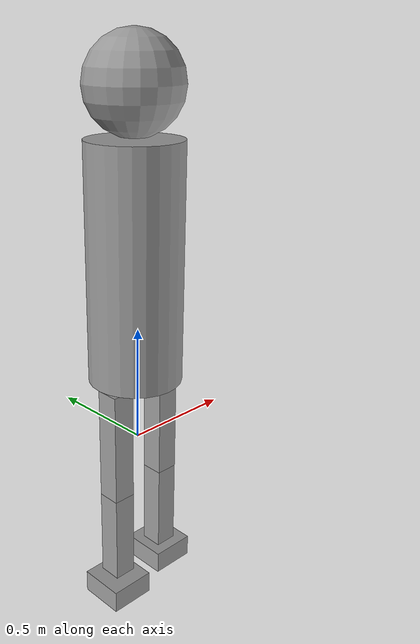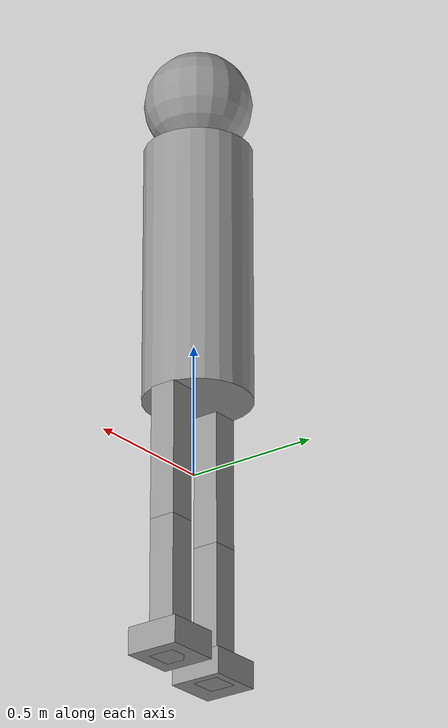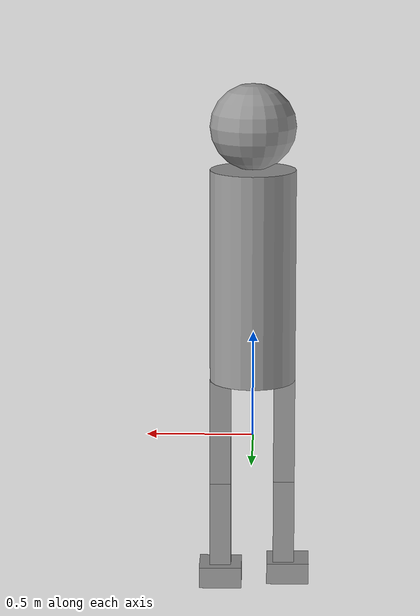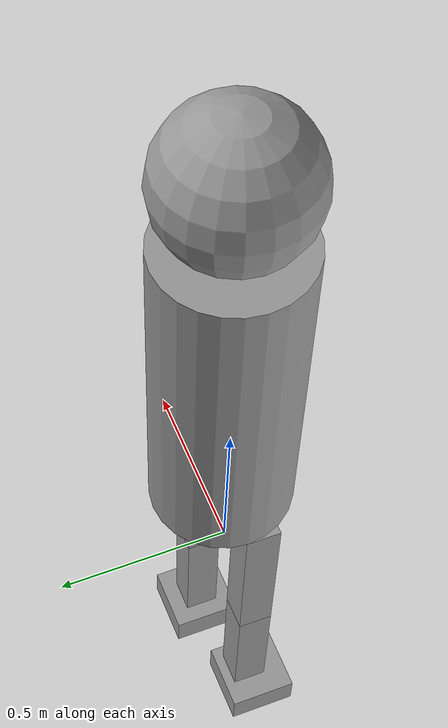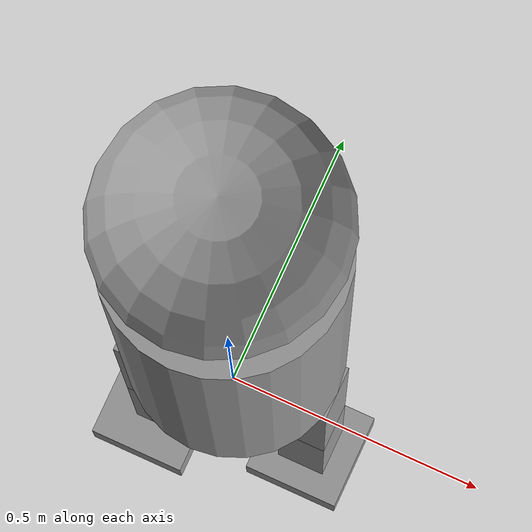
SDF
<?xml version='1.0'?>
<sdf version='1.6'>
  <model name='humanoid_1'>
    <link name='link_0'>
      <pose frame=''>0.0025 0.019375 0.775 0 -0 0</pose>
      <inertial>
        <mass>1</mass>
        <inertia>
          <ixx>0.145833</ixx>
          <ixy>0</ixy>
          <ixz>0</ixz>
          <iyy>0.145833</iyy>
          <iyz>0</iyz>
          <izz>0.125</izz>
        </inertia>
        <pose frame=''>0 0 0 0 -0 0</pose>
      </inertial>
      <gravity>1</gravity>
      <self_collide>0</self_collide>
      <kinematic>0</kinematic>
      <visual name='visual'>
        <pose frame=''>0 0 0 0 -0 0</pose>
        <geometry>
          <cylinder>
            <radius>0.2</radius>
            <length>1</length>
          </cylinder>
        </geometry>
        <material>
          <lighting>1</lighting>
          <script>
            <uri>file://media/materials/scripts/gazebo.material</uri>
            <name>Gazebo/Grey</name>
          </script>
          <shader type='pixel'>
            <normal_map>__default__</normal_map>
          </shader>
          <ambient>0.3 0.3 0.3 1</ambient>
          <diffuse>0.7 0.7 0.7 1</diffuse>
          <specular>0.01 0.01 0.01 1</specular>
          <emissive>0 0 0 1</emissive>
        </material>
        <transparency>0</transparency>
        <cast_shadows>1</cast_shadows>
      </visual>
      <collision name='collision'>
        <laser_retro>0</laser_retro>
        <max_contacts>10</max_contacts>
        <pose frame=''>0 0 0 0 -0 0</pose>
        <geometry>
          <cylinder>
            <radius>0.2</radius>
            <length>1</length>
          </cylinder>
        </geometry>
        <surface>
          <friction>
            <ode>
              <mu>1</mu>
              <mu2>1</mu2>
              <fdir1>0 0 0</fdir1>
              <slip1>0</slip1>
              <slip2>0</slip2>
            </ode>
            <torsional>
              <coefficient>1</coefficient>
              <patch_radius>0</patch_radius>
              <surface_radius>0</surface_radius>
              <use_patch_radius>1</use_patch_radius>
              <ode>
                <slip>0</slip>
              </ode>
            </torsional>
          </friction>
          <bounce>
            <restitution_coefficient>0</restitution_coefficient>
            <threshold>1e+06</threshold>
          </bounce>
          <contact>
            <collide_without_contact>0</collide_without_contact>
            <collide_without_contact_bitmask>1</collide_without_contact_bitmask>
            <collide_bitmask>1</collide_bitmask>
            <ode>
              <soft_cfm>0</soft_cfm>
              <soft_erp>0.2</soft_erp>
              <kp>1e+13</kp>
              <kd>1</kd>
              <max_vel>0.01</max_vel>
              <min_depth>0</min_depth>
            </ode>
            <bullet>
              <split_impulse>1</split_impulse>
              <split_impulse_penetration_threshold>-0.01</split_impulse_penetration_threshold>
              <soft_cfm>0</soft_cfm>
              <soft_erp>0.2</soft_erp>
              <kp>1e+13</kp>
              <kd>1</kd>
            </bullet>
          </contact>
        </surface>
      </collision>
    </link>
    <link name='link_2'>
      <pose frame=''>0.0025 0.019375 1.475 0 -0 0</pose>
      <inertial>
        <mass>1</mass>
        <inertia>
          <ixx>0.1</ixx>
          <ixy>0</ixy>
          <ixz>0</ixz>
          <iyy>0.1</iyy>
          <iyz>0</iyz>
          <izz>0.1</izz>
        </inertia>
        <pose frame=''>0 0 0 0 -0 0</pose>
      </inertial>
      <gravity>1</gravity>
      <self_collide>0</self_collide>
      <kinematic>0</kinematic>
      <visual name='visual'>
        <pose frame=''>0 0 0 0 -0 0</pose>
        <geometry>
          <sphere>
            <radius>0.2</radius>
          </sphere>
        </geometry>
        <material>
          <lighting>1</lighting>
          <script>
            <uri>file://media/materials/scripts/gazebo.material</uri>
            <name>Gazebo/Grey</name>
          </script>
          <shader type='pixel'>
            <normal_map>__default__</normal_map>
          </shader>
          <ambient>0.3 0.3 0.3 1</ambient>
          <diffuse>0.7 0.7 0.7 1</diffuse>
          <specular>0.01 0.01 0.01 1</specular>
          <emissive>0 0 0 1</emissive>
        </material>
        <transparency>0</transparency>
        <cast_shadows>1</cast_shadows>
      </visual>
      <collision name='collision'>
        <laser_retro>0</laser_retro>
        <max_contacts>10</max_contacts>
        <pose frame=''>0 0 0 0 -0 0</pose>
        <geometry>
          <sphere>
            <radius>0.2</radius>
          </sphere>
        </geometry>
        <surface>
          <friction>
            <ode>
              <mu>1</mu>
              <mu2>1</mu2>
              <fdir1>0 0 0</fdir1>
              <slip1>0</slip1>
              <slip2>0</slip2>
            </ode>
            <torsional>
              <coefficient>1</coefficient>
              <patch_radius>0</patch_radius>
              <surface_radius>0</surface_radius>
              <use_patch_radius>1</use_patch_radius>
              <ode>
                <slip>0</slip>
              </ode>
            </torsional>
          </friction>
          <bounce>
            <restitution_coefficient>0</restitution_coefficient>
            <threshold>1e+06</threshold>
          </bounce>
          <contact>
            <collide_without_contact>0</collide_without_contact>
            <collide_without_contact_bitmask>1</collide_without_contact_bitmask>
            <collide_bitmask>1</collide_bitmask>
            <ode>
              <soft_cfm>0</soft_cfm>
              <soft_erp>0.2</soft_erp>
              <kp>1e+13</kp>
              <kd>1</kd>
              <max_vel>0.01</max_vel>
              <min_depth>0</min_depth>
            </ode>
            <bullet>
              <split_impulse>1</split_impulse>
              <split_impulse_penetration_threshold>-0.01</split_impulse_penetration_threshold>
              <soft_cfm>0</soft_cfm>
              <soft_erp>0.2</soft_erp>
              <kp>1e+13</kp>
              <kd>1</kd>
            </bullet>
          </contact>
        </surface>
      </collision>
    </link>
    <link name='link_4'>
      <pose frame=''>-0.1475 -0.025625 0.025 0 -0 0</pose>
      <inertial>
        <mass>1</mass>
        <inertia>
          <ixx>0.166667</ixx>
          <ixy>0</ixy>
          <ixz>0</ixz>
          <iyy>0.166667</iyy>
          <iyz>0</iyz>
          <izz>0.166667</izz>
        </inertia>
        <pose frame=''>0 0 0 0 -0 0</pose>
      </inertial>
      <gravity>1</gravity>
      <self_collide>0</self_collide>
      <kinematic>0</kinematic>
      <visual name='visual'>
        <pose frame=''>0 0 0 0 -0 0</pose>
        <geometry>
          <box>
            <size>0.1 0.1 0.5</size>
          </box>
        </geometry>
        <material>
          <lighting>1</lighting>
          <script>
            <uri>file://media/materials/scripts/gazebo.material</uri>
            <name>Gazebo/Grey</name>
          </script>
          <shader type='pixel'>
            <normal_map>__default__</normal_map>
          </shader>
          <ambient>0.3 0.3 0.3 1</ambient>
          <diffuse>0.7 0.7 0.7 1</diffuse>
          <specular>0.01 0.01 0.01 1</specular>
          <emissive>0 0 0 1</emissive>
        </material>
        <transparency>0</transparency>
        <cast_shadows>1</cast_shadows>
      </visual>
      <collision name='collision'>
        <laser_retro>0</laser_retro>
        <max_contacts>10</max_contacts>
        <pose frame=''>0 0 0 0 -0 0</pose>
        <geometry>
          <box>
            <size>0.1 0.1 0.5</size>
          </box>
        </geometry>
        <surface>
          <friction>
            <ode>
              <mu>1</mu>
              <mu2>1</mu2>
              <fdir1>0 0 0</fdir1>
              <slip1>0</slip1>
              <slip2>0</slip2>
            </ode>
            <torsional>
              <coefficient>1</coefficient>
              <patch_radius>0</patch_radius>
              <surface_radius>0</surface_radius>
              <use_patch_radius>1</use_patch_radius>
              <ode>
                <slip>0</slip>
              </ode>
            </torsional>
          </friction>
          <bounce>
            <restitution_coefficient>0</restitution_coefficient>
            <threshold>1e+06</threshold>
          </bounce>
          <contact>
            <collide_without_contact>0</collide_without_contact>
            <collide_without_contact_bitmask>1</collide_without_contact_bitmask>
            <collide_bitmask>1</collide_bitmask>
            <ode>
              <soft_cfm>0</soft_cfm>
              <soft_erp>0.2</soft_erp>
              <kp>1e+13</kp>
              <kd>1</kd>
              <max_vel>0.01</max_vel>
              <min_depth>0</min_depth>
            </ode>
            <bullet>
              <split_impulse>1</split_impulse>
              <split_impulse_penetration_threshold>-0.01</split_impulse_penetration_threshold>
              <soft_cfm>0</soft_cfm>
              <soft_erp>0.2</soft_erp>
              <kp>1e+13</kp>
              <kd>1</kd>
            </bullet>
          </contact>
        </surface>
      </collision>
    </link>
    <link name='link_4_clone'>
      <pose frame=''>-0.1475 -0.025625 -0.475 0 -0 0</pose>
      <inertial>
        <mass>1</mass>
        <inertia>
          <ixx>0.166667</ixx>
          <ixy>0</ixy>
          <ixz>0</ixz>
          <iyy>0.166667</iyy>
          <iyz>0</iyz>
          <izz>0.166667</izz>
        </inertia>
        <pose frame=''>0 0 0 0 -0 0</pose>
      </inertial>
      <self_collide>0</self_collide>
      <kinematic>0</kinematic>
      <gravity>1</gravity>
      <visual name='visual'>
        <pose frame=''>0 0 0 0 -0 0</pose>
        <geometry>
          <box>
            <size>0.1 0.1 0.5</size>
          </box>
        </geometry>
        <material>
          <lighting>1</lighting>
          <script>
            <uri>file://media/materials/scripts/gazebo.material</uri>
            <name>Gazebo/Grey</name>
          </script>
          <shader type='pixel'>
            <normal_map>__default__</normal_map>
          </shader>
          <ambient>0.3 0.3 0.3 1</ambient>
          <diffuse>0.7 0.7 0.7 1</diffuse>
          <specular>0.01 0.01 0.01 1</specular>
          <emissive>0 0 0 1</emissive>
        </material>
        <transparency>0</transparency>
        <cast_shadows>1</cast_shadows>
      </visual>
      <collision name='collision'>
        <laser_retro>0</laser_retro>
        <max_contacts>10</max_contacts>
        <pose frame=''>0 0 0 0 -0 0</pose>
        <geometry>
          <box>
            <size>0.1 0.1 0.5</size>
          </box>
        </geometry>
        <surface>
          <friction>
            <ode>
              <mu>1</mu>
              <mu2>1</mu2>
              <fdir1>0 0 0</fdir1>
              <slip1>0</slip1>
              <slip2>0</slip2>
            </ode>
            <torsional>
              <coefficient>1</coefficient>
              <patch_radius>0</patch_radius>
              <surface_radius>0</surface_radius>
              <use_patch_radius>1</use_patch_radius>
              <ode>
                <slip>0</slip>
              </ode>
            </torsional>
          </friction>
          <bounce>
            <restitution_coefficient>0</restitution_coefficient>
            <threshold>1e+06</threshold>
          </bounce>
          <contact>
            <collide_without_contact>0</collide_without_contact>
            <collide_without_contact_bitmask>1</collide_without_contact_bitmask>
            <collide_bitmask>1</collide_bitmask>
            <ode>
              <soft_cfm>0</soft_cfm>
              <soft_erp>0.2</soft_erp>
              <kp>1e+13</kp>
              <kd>1</kd>
              <max_vel>0.01</max_vel>
              <min_depth>0</min_depth>
            </ode>
            <bullet>
              <split_impulse>1</split_impulse>
              <split_impulse_penetration_threshold>-0.01</split_impulse_penetration_threshold>
              <soft_cfm>0</soft_cfm>
              <soft_erp>0.2</soft_erp>
              <kp>1e+13</kp>
              <kd>1</kd>
            </bullet>
          </contact>
        </surface>
      </collision>
    </link>
    <link name='link_4_clone_0'>
      <pose frame=''>0.1525 0.019375 0.025 0 -0 0</pose>
      <inertial>
        <mass>1</mass>
        <inertia>
          <ixx>0.166667</ixx>
          <ixy>0</ixy>
          <ixz>0</ixz>
          <iyy>0.166667</iyy>
          <iyz>0</iyz>
          <izz>0.166667</izz>
        </inertia>
        <pose frame=''>0 0 0 0 -0 0</pose>
      </inertial>
      <self_collide>0</self_collide>
      <kinematic>0</kinematic>
      <visual name='visual'>
        <pose frame=''>0 0 0 0 -0 0</pose>
        <geometry>
          <box>
            <size>0.1 0.1 0.5</size>
          </box>
        </geometry>
        <material>
          <lighting>1</lighting>
          <script>
            <uri>file://media/materials/scripts/gazebo.material</uri>
            <name>Gazebo/Grey</name>
          </script>
          <shader type='pixel'>
            <normal_map>__default__</normal_map>
          </shader>
          <ambient>0.3 0.3 0.3 1</ambient>
          <diffuse>0.7 0.7 0.7 1</diffuse>
          <specular>0.01 0.01 0.01 1</specular>
          <emissive>0 0 0 1</emissive>
        </material>
        <transparency>0</transparency>
        <cast_shadows>1</cast_shadows>
      </visual>
      <collision name='collision'>
        <laser_retro>0</laser_retro>
        <max_contacts>10</max_contacts>
        <pose frame=''>0 0 0 0 -0 0</pose>
        <geometry>
          <box>
            <size>0.1 0.1 0.5</size>
          </box>
        </geometry>
        <surface>
          <friction>
            <ode>
              <mu>1</mu>
              <mu2>1</mu2>
              <fdir1>0 0 0</fdir1>
              <slip1>0</slip1>
              <slip2>0</slip2>
            </ode>
            <torsional>
              <coefficient>1</coefficient>
              <patch_radius>0</patch_radius>
              <surface_radius>0</surface_radius>
              <use_patch_radius>1</use_patch_radius>
              <ode>
                <slip>0</slip>
              </ode>
            </torsional>
          </friction>
          <bounce>
            <restitution_coefficient>0</restitution_coefficient>
            <threshold>1e+06</threshold>
          </bounce>
          <contact>
            <collide_without_contact>0</collide_without_contact>
            <collide_without_contact_bitmask>1</collide_without_contact_bitmask>
            <collide_bitmask>1</collide_bitmask>
            <ode>
              <soft_cfm>0</soft_cfm>
              <soft_erp>0.2</soft_erp>
              <kp>1e+13</kp>
              <kd>1</kd>
              <max_vel>0.01</max_vel>
              <min_depth>0</min_depth>
            </ode>
            <bullet>
              <split_impulse>1</split_impulse>
              <split_impulse_penetration_threshold>-0.01</split_impulse_penetration_threshold>
              <soft_cfm>0</soft_cfm>
              <soft_erp>0.2</soft_erp>
              <kp>1e+13</kp>
              <kd>1</kd>
            </bullet>
          </contact>
        </surface>
      </collision>
    </link>
    <link name='link_4_clone_1'>
      <pose frame=''>0.1525 0.019375 -0.475 0 -0 0</pose>
      <inertial>
        <mass>1</mass>
        <inertia>
          <ixx>0.166667</ixx>
          <ixy>0</ixy>
          <ixz>0</ixz>
          <iyy>0.166667</iyy>
          <iyz>0</iyz>
          <izz>0.166667</izz>
        </inertia>
        <pose frame=''>0 0 0 0 -0 0</pose>
      </inertial>
      <self_collide>0</self_collide>
      <kinematic>0</kinematic>
      <visual name='visual'>
        <pose frame=''>0 0 0 0 -0 0</pose>
        <geometry>
          <box>
            <size>0.1 0.1 0.5</size>
          </box>
        </geometry>
        <material>
          <lighting>1</lighting>
          <script>
            <uri>file://media/materials/scripts/gazebo.material</uri>
            <name>Gazebo/Grey</name>
          </script>
          <shader type='pixel'>
            <normal_map>__default__</normal_map>
          </shader>
          <ambient>0.3 0.3 0.3 1</ambient>
          <diffuse>0.7 0.7 0.7 1</diffuse>
          <specular>0.01 0.01 0.01 1</specular>
          <emissive>0 0 0 1</emissive>
        </material>
        <transparency>0</transparency>
        <cast_shadows>1</cast_shadows>
      </visual>
      <collision name='collision'>
        <laser_retro>0</laser_retro>
        <max_contacts>10</max_contacts>
        <pose frame=''>0 0 0 0 -0 0</pose>
        <geometry>
          <box>
            <size>0.1 0.1 0.5</size>
          </box>
        </geometry>
        <surface>
          <friction>
            <ode>
              <mu>1</mu>
              <mu2>1</mu2>
              <fdir1>0 0 0</fdir1>
              <slip1>0</slip1>
              <slip2>0</slip2>
            </ode>
            <torsional>
              <coefficient>1</coefficient>
              <patch_radius>0</patch_radius>
              <surface_radius>0</surface_radius>
              <use_patch_radius>1</use_patch_radius>
              <ode>
                <slip>0</slip>
              </ode>
            </torsional>
          </friction>
          <bounce>
            <restitution_coefficient>0</restitution_coefficient>
            <threshold>1e+06</threshold>
          </bounce>
          <contact>
            <collide_without_contact>0</collide_without_contact>
            <collide_without_contact_bitmask>1</collide_without_contact_bitmask>
            <collide_bitmask>1</collide_bitmask>
            <ode>
              <soft_cfm>0</soft_cfm>
              <soft_erp>0.2</soft_erp>
              <kp>1e+13</kp>
              <kd>1</kd>
              <max_vel>0.01</max_vel>
              <min_depth>0</min_depth>
            </ode>
            <bullet>
              <split_impulse>1</split_impulse>
              <split_impulse_penetration_threshold>-0.01</split_impulse_penetration_threshold>
              <soft_cfm>0</soft_cfm>
              <soft_erp>0.2</soft_erp>
              <kp>1e+13</kp>
              <kd>1</kd>
            </bullet>
          </contact>
        </surface>
      </collision>
    </link>
    <link name='link_5'>
      <pose frame=''>-0.1675 -0.045625 -0.675 0 -0 0</pose>
      <inertial>
        <mass>1</mass>
        <inertia>
          <ixx>0.166667</ixx>
          <ixy>0</ixy>
          <ixz>0</ixz>
          <iyy>0.166667</iyy>
          <iyz>0</iyz>
          <izz>0.166667</izz>
        </inertia>
        <pose frame=''>0 0 0 0 -0 0</pose>
      </inertial>
      <gravity>1</gravity>
      <self_collide>0</self_collide>
      <kinematic>0</kinematic>
      <visual name='visual'>
        <pose frame=''>0 0 0 0 -0 0</pose>
        <geometry>
          <box>
            <size>0.2 0.2 0.1</size>
          </box>
        </geometry>
        <material>
          <lighting>1</lighting>
          <script>
            <uri>file://media/materials/scripts/gazebo.material</uri>
            <name>Gazebo/Grey</name>
          </script>
          <shader type='pixel'>
            <normal_map>__default__</normal_map>
          </shader>
          <ambient>0.3 0.3 0.3 1</ambient>
          <diffuse>0.7 0.7 0.7 1</diffuse>
          <specular>0.01 0.01 0.01 1</specular>
          <emissive>0 0 0 1</emissive>
        </material>
        <transparency>0</transparency>
        <cast_shadows>1</cast_shadows>
      </visual>
      <collision name='collision'>
        <laser_retro>0</laser_retro>
        <max_contacts>10</max_contacts>
        <pose frame=''>0 0 0 0 -0 0</pose>
        <geometry>
          <box>
            <size>0.2 0.2 0.1</size>
          </box>
        </geometry>
        <surface>
          <friction>
            <ode>
              <mu>1</mu>
              <mu2>1</mu2>
              <fdir1>0 0 0</fdir1>
              <slip1>0</slip1>
              <slip2>0</slip2>
            </ode>
            <torsional>
              <coefficient>1</coefficient>
              <patch_radius>0</patch_radius>
              <surface_radius>0</surface_radius>
              <use_patch_radius>1</use_patch_radius>
              <ode>
                <slip>0</slip>
              </ode>
            </torsional>
          </friction>
          <bounce>
            <restitution_coefficient>0</restitution_coefficient>
            <threshold>1e+06</threshold>
          </bounce>
          <contact>
            <collide_without_contact>0</collide_without_contact>
            <collide_without_contact_bitmask>1</collide_without_contact_bitmask>
            <collide_bitmask>1</collide_bitmask>
            <ode>
              <soft_cfm>0</soft_cfm>
              <soft_erp>0.2</soft_erp>
              <kp>1e+13</kp>
              <kd>1</kd>
              <max_vel>0.01</max_vel>
              <min_depth>0</min_depth>
            </ode>
            <bullet>
              <split_impulse>1</split_impulse>
              <split_impulse_penetration_threshold>-0.01</split_impulse_penetration_threshold>
              <soft_cfm>0</soft_cfm>
              <soft_erp>0.2</soft_erp>
              <kp>1e+13</kp>
              <kd>1</kd>
            </bullet>
          </contact>
        </surface>
      </collision>
    </link>
    <link name='link_5_clone'>
      <pose frame=''>0.1525 0.019375 -0.675 0 -0 0</pose>
      <inertial>
        <mass>1</mass>
        <inertia>
          <ixx>0.166667</ixx>
          <ixy>0</ixy>
          <ixz>0</ixz>
          <iyy>0.166667</iyy>
          <iyz>0</iyz>
          <izz>0.166667</izz>
        </inertia>
        <pose frame=''>0 0 0 0 -0 0</pose>
      </inertial>
      <self_collide>0</self_collide>
      <kinematic>0</kinematic>
      <visual name='visual'>
        <pose frame=''>0 0 0 0 -0 0</pose>
        <geometry>
          <box>
            <size>0.2 0.2 0.1</size>
          </box>
        </geometry>
        <material>
          <lighting>1</lighting>
          <script>
            <uri>file://media/materials/scripts/gazebo.material</uri>
            <name>Gazebo/Grey</name>
          </script>
          <shader type='pixel'>
            <normal_map>__default__</normal_map>
          </shader>
          <ambient>0.3 0.3 0.3 1</ambient>
          <diffuse>0.7 0.7 0.7 1</diffuse>
          <specular>0.01 0.01 0.01 1</specular>
          <emissive>0 0 0 1</emissive>
        </material>
        <transparency>0</transparency>
        <cast_shadows>1</cast_shadows>
      </visual>
      <collision name='collision'>
        <laser_retro>0</laser_retro>
        <max_contacts>10</max_contacts>
        <pose frame=''>0 0 0 0 -0 0</pose>
        <geometry>
          <box>
            <size>0.2 0.2 0.1</size>
          </box>
        </geometry>
        <surface>
          <friction>
            <ode>
              <mu>1</mu>
              <mu2>1</mu2>
              <fdir1>0 0 0</fdir1>
              <slip1>0</slip1>
              <slip2>0</slip2>
            </ode>
            <torsional>
              <coefficient>1</coefficient>
              <patch_radius>0</patch_radius>
              <surface_radius>0</surface_radius>
              <use_patch_radius>1</use_patch_radius>
              <ode>
                <slip>0</slip>
              </ode>
            </torsional>
          </friction>
          <bounce>
            <restitution_coefficient>0</restitution_coefficient>
            <threshold>1e+06</threshold>
          </bounce>
          <contact>
            <collide_without_contact>0</collide_without_contact>
            <collide_without_contact_bitmask>1</collide_without_contact_bitmask>
            <collide_bitmask>1</collide_bitmask>
            <ode>
              <soft_cfm>0</soft_cfm>
              <soft_erp>0.2</soft_erp>
              <kp>1e+13</kp>
              <kd>1</kd>
              <max_vel>0.01</max_vel>
              <min_depth>0</min_depth>
            </ode>
            <bullet>
              <split_impulse>1</split_impulse>
              <split_impulse_penetration_threshold>-0.01</split_impulse_penetration_threshold>
              <soft_cfm>0</soft_cfm>
              <soft_erp>0.2</soft_erp>
              <kp>1e+13</kp>
              <kd>1</kd>
            </bullet>
          </contact>
        </surface>
      </collision>
    </link>
    <joint name='link_0_JOINT_0' type='fixed'>
      <parent>link_0</parent>
      <child>link_2</child>
      <pose frame=''>0 0 0 0 -0 0</pose>
      <physics>
        <ode>
          <limit>
            <cfm>0</cfm>
            <erp>0.2</erp>
          </limit>
          <suspension>
            <cfm>0</cfm>
            <erp>0.2</erp>
          </suspension>
        </ode>
      </physics>
    </joint>
    <joint name='link_0_JOINT_1' type='revolute2'>
      <parent>link_0</parent>
      <child>link_4</child>
      <pose frame=''>0 0 0 0 -0 0</pose>
      <axis>
        <xyz>1 0 0</xyz>
        <use_parent_model_frame>0</use_parent_model_frame>
        <limit>
          <lower>-1.79769e+308</lower>
          <upper>1.79769e+308</upper>
          <effort>-1</effort>
          <velocity>-1</velocity>
        </limit>
        <dynamics>
          <spring_reference>0</spring_reference>
          <spring_stiffness>0</spring_stiffness>
          <damping>0</damping>
        </dynamics>
      </axis>
      <axis2>
        <xyz>0 1 0</xyz>
        <use_parent_model_frame>0</use_parent_model_frame>
        <dynamics>
          <spring_reference>0</spring_reference>
          <spring_stiffness>0</spring_stiffness>
          <damping>0</damping>
        </dynamics>
        <limit>
          <lower>-1.79769e+308</lower>
          <upper>1.79769e+308</upper>
          <effort>-1</effort>
          <velocity>-1</velocity>
        </limit>
      </axis2>
      <physics>
        <ode>
          <limit>
            <cfm>0</cfm>
            <erp>0.2</erp>
          </limit>
          <suspension>
            <cfm>0</cfm>
            <erp>0.2</erp>
          </suspension>
        </ode>
      </physics>
    </joint>
    <joint name='link_0_JOINT_3' type='revolute2'>
      <parent>link_0</parent>
      <child>link_4_clone_0</child>
      <pose frame=''>0 0 0 0 -0 0</pose>
      <axis>
        <xyz>1 0 0</xyz>
        <use_parent_model_frame>0</use_parent_model_frame>
        <limit>
          <lower>-1.79769e+308</lower>
          <upper>1.79769e+308</upper>
          <effort>-1</effort>
          <velocity>-1</velocity>
        </limit>
        <dynamics>
          <spring_reference>0</spring_reference>
          <spring_stiffness>0</spring_stiffness>
          <damping>0</damping>
        </dynamics>
      </axis>
      <axis2>
        <xyz>0 1 0</xyz>
        <use_parent_model_frame>0</use_parent_model_frame>
        <dynamics>
          <spring_reference>0</spring_reference>
          <spring_stiffness>0</spring_stiffness>
          <damping>0</damping>
        </dynamics>
        <limit>
          <lower>-1.79769e+308</lower>
          <upper>1.79769e+308</upper>
          <effort>-1</effort>
          <velocity>-1</velocity>
        </limit>
      </axis2>
      <physics>
        <ode>
          <limit>
            <cfm>0</cfm>
            <erp>0.2</erp>
          </limit>
          <suspension>
            <cfm>0</cfm>
            <erp>0.2</erp>
          </suspension>
        </ode>
      </physics>
    </joint>
    <joint name='link_4_JOINT_2' type='revolute'>
      <parent>link_4</parent>
      <child>link_4_clone</child>
      <pose frame=''>0 0 0 0 -0 0</pose>
      <axis>
        <xyz>0 1 0</xyz>
        <use_parent_model_frame>0</use_parent_model_frame>
        <limit>
          <lower>-1.79769e+308</lower>
          <upper>1.79769e+308</upper>
          <effort>-1</effort>
          <velocity>-1</velocity>
        </limit>
        <dynamics>
          <spring_reference>0</spring_reference>
          <spring_stiffness>0</spring_stiffness>
          <damping>0</damping>
        </dynamics>
      </axis>
      <physics>
        <ode>
          <limit>
            <cfm>0</cfm>
            <erp>0.2</erp>
          </limit>
          <suspension>
            <cfm>0</cfm>
            <erp>0.2</erp>
          </suspension>
        </ode>
      </physics>
    </joint>
    <joint name='link_4_clone_0_JOINT_4' type='revolute'>
      <parent>link_4_clone_0</parent>
      <child>link_4_clone_1</child>
      <pose frame=''>0 0 0 0 -0 0</pose>
      <axis>
        <xyz>0 1 0</xyz>
        <use_parent_model_frame>0</use_parent_model_frame>
        <limit>
          <lower>-1.79769e+308</lower>
          <upper>1.79769e+308</upper>
          <effort>-1</effort>
          <velocity>-1</velocity>
        </limit>
        <dynamics>
          <spring_reference>0</spring_reference>
          <spring_stiffness>0</spring_stiffness>
          <damping>0</damping>
        </dynamics>
      </axis>
      <physics>
        <ode>
          <limit>
            <cfm>0</cfm>
            <erp>0.2</erp>
          </limit>
          <suspension>
            <cfm>0</cfm>
            <erp>0.2</erp>
          </suspension>
        </ode>
      </physics>
    </joint>
    <joint name='link_4_clone_1_JOINT_6' type='fixed'>
      <parent>link_4_clone_1</parent>
      <child>link_5_clone</child>
      <pose frame=''>0 0 0 0 -0 0</pose>
      <physics>
        <ode>
          <limit>
            <cfm>0</cfm>
            <erp>0.2</erp>
          </limit>
          <suspension>
            <cfm>0</cfm>
            <erp>0.2</erp>
          </suspension>
        </ode>
      </physics>
    </joint>
    <joint name='link_4_clone_JOINT_5' type='fixed'>
      <parent>link_4_clone</parent>
      <child>link_5</child>
      <pose frame=''>0 0 0 0 -0 0</pose>
      <physics>
        <ode>
          <limit>
            <cfm>0</cfm>
            <erp>0.2</erp>
          </limit>
          <suspension>
            <cfm>0</cfm>
            <erp>0.2</erp>
          </suspension>
        </ode>
      </physics>
    </joint>
    <static>0</static>
    <allow_auto_disable>1</allow_auto_disable>
  </model>
</sdf>
